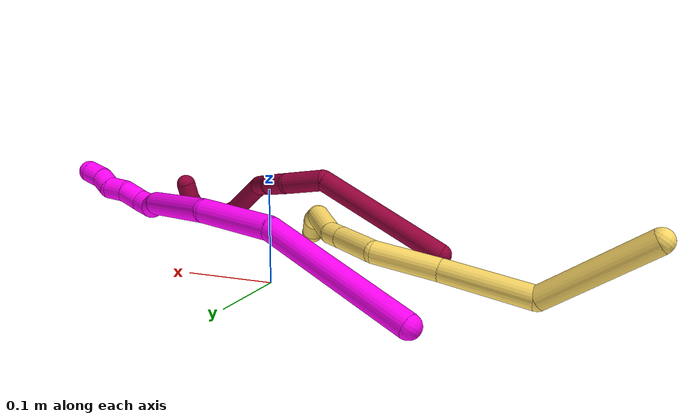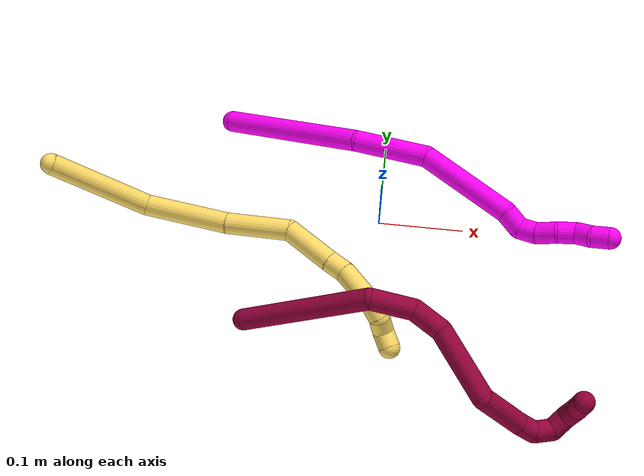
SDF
<sdf version="1.7">
 <world name="default">
  <model name="photoneo_s_sensor">
   <static>1</static>
   <pose>0 0 2 1.57079 1.57079 3.14159</pose>
   <link name="link">
    <inertial><mass>0.1</mass></inertial>
    <sensor name="sensor" type="depth">
     <update_rate>30</update_rate>
     <camera>
      <horizontal_fov>1.22</horizontal_fov>
      <image><width>1920</width><height>1200</height><format>B8G8R8</format></image>
      <clip><near>0.1</near><far>4</far></clip>
      <depth_camera><output>points</output></depth_camera>
     </camera>
     <plugin name="camera_plugin" filename="libgazebo_ros_depth_camera.so">
      <baseline>0.2</baseline>
      <alwaysOn>1</alwaysOn>
      <updateRate>0.0</updateRate>
      <cameraName>camera_ir</cameraName>
      <imageTopicName>/camera/color/image_raw</imageTopicName>
      <cameraInfoTopicName>/camera/color/camera_info</cameraInfoTopicName>
      <depthImageTopicName>/camera/depth/image_raw</depthImageTopicName>
      <depthImageCameraInfoTopicName>/camera/depth/camera_info</depthImageCameraInfoTopicName>
      <pointCloudTopicName>/camera/depth/points</pointCloudTopicName>
      <frameName>fr_optical</frameName>
      <pointCloudCutoff>0.1</pointCloudCutoff>
      <pointCloudCutoffMax>2.0</pointCloudCutoffMax>
      <distortionK1>0</distortionK1>
      <distortionK2>0</distortionK2>
      <distortionK3>0</distortionK3>
      <distortionT1>0</distortionT1>
      <distortionT2>0</distortionT2>
      <CxPrime>0</CxPrime>
      <Cx>0</Cx>
      <Cy>0</Cy>
      <focalLength>0</focalLength>
      <hackBaseline>0</hackBaseline>
     </plugin>
    </sensor>
   </link>
  </model>
  <model name="bin">
   <static>1</static>
   <link name="bottom">
    <collision name="collision-bottom">
     <pose>0 0 -0.01 0 -0 0</pose>
     <geometry><box><size>0.8 0.6 0.02</size></box></geometry>
     <surface>
      <friction><ode><mu>100</mu><mu2>100</mu2></ode></friction>
      <contact><collide_bitmask>65535</collide_bitmask></contact>
     </surface>
    </collision>
   </link>
   <link name="west_wall">
    <collision name="collision-west_wall">
     <pose>-0.41 0 0.1 0 -0 0</pose>
     <geometry><box><size>0.02 0.6 0.2</size></box></geometry>
     <surface>
      <friction><ode><mu>100</mu><mu2>100</mu2></ode></friction>
      <contact><collide_bitmask>65535</collide_bitmask></contact>
     </surface>
    </collision>
   </link>
   <link name="east_wall">
    <collision name="collision-east_wall">
     <pose>0.41 0 0.1 0 -0 0</pose>
     <geometry><box><size>0.02 0.6 0.2</size></box></geometry>
     <surface>
      <friction><ode><mu>100</mu><mu2>100</mu2></ode></friction>
      <contact><collide_bitmask>65535</collide_bitmask></contact>
     </surface>
    </collision>
   </link>
   <link name="south_wall">
    <collision name="collision-south_wall">
     <pose>0 -0.31 0.1 0 -0 0</pose>
     <geometry><box><size>0.8 0.02 0.2</size></box></geometry>
     <surface>
      <friction><ode><mu>100</mu><mu2>100</mu2></ode></friction>
      <contact><collide_bitmask>65535</collide_bitmask></contact>
     </surface>
    </collision>
   </link>
   <link name="north_wall">
    <collision name="collision-north_wall">
     <pose>0 0.31 0.1 0 -0 0</pose>
     <geometry><box><size>0.8 0.02 0.2</size></box></geometry>
     <surface>
      <friction><ode><mu>100</mu><mu2>100</mu2></ode></friction>
      <contact><collide_bitmask>65535</collide_bitmask></contact>
     </surface>
    </collision>
   </link>
  </model>
  <model name="5">
   <static>0</static>
   <link name="5">
    <collision name="collision-cylinder-e_1_1_4">
     <pose>0.032344 -0.017475 -0.050752 2.80998 0.54231 2.0579</pose>
     <geometry><cylinder><radius>0.0125</radius><length>0.125336</length></cylinder></geometry>
     <surface>
      <friction><ode><mu>1.16</mu><mu2>1.16</mu2><slip1>0</slip1><slip2>0</slip2></ode></friction>
      <contact><ode><kp>1e+06</kp><kd>1</kd><max_vel>0</max_vel><min_depth>0.001</min_depth></ode></contact>
     </surface>
    </collision>
    <visual name="visual-cylinder-e_1_1_4">
     <pose>0.032344 -0.017475 -0.050752 2.80998 0.54231 2.0579</pose>
     <geometry><cylinder><radius>0.0125</radius><length>0.125336</length></cylinder></geometry>
     <material><ambient>1 0.858824 0.4 1</ambient></material>
    </visual>
    <collision name="collision-cylinder-e_2_4_5">
     <pose>0.113162 -0.039813 -0.117609 2.84836 1.23674 2.73226</pose>
     <geometry><cylinder><radius>0.0125</radius><length>0.10262</length></cylinder></geometry>
     <surface>
      <friction><ode><mu>1.16</mu><mu2>1.16</mu2><slip1>0</slip1><slip2>0</slip2></ode></friction>
      <contact><ode><kp>1e+06</kp><kd>1</kd><max_vel>0</max_vel><min_depth>0.001</min_depth></ode></contact>
     </surface>
    </collision>
    <visual name="visual-cylinder-e_2_4_5">
     <pose>0.113162 -0.039813 -0.117609 2.84836 1.23674 2.73226</pose>
     <geometry><cylinder><radius>0.0125</radius><length>0.10262</length></cylinder></geometry>
     <material><ambient>1 0.858824 0.4 1</ambient></material>
    </visual>
    <collision name="collision-cylinder-e_3_5_6">
     <pose>0.197253 -0.044291 -0.147015 -3.11264 1.21327 -3.09988</pose>
     <geometry><cylinder><radius>0.0125</radius><length>0.076042</length></cylinder></geometry>
     <surface>
      <friction><ode><mu>1.16</mu><mu2>1.16</mu2><slip1>0</slip1><slip2>0</slip2></ode></friction>
      <contact><ode><kp>1e+06</kp><kd>1</kd><max_vel>0</max_vel><min_depth>0.001</min_depth></ode></contact>
     </surface>
    </collision>
    <visual name="visual-cylinder-e_3_5_6">
     <pose>0.197253 -0.044291 -0.147015 -3.11264 1.21327 -3.09988</pose>
     <geometry><cylinder><radius>0.0125</radius><length>0.076042</length></cylinder></geometry>
     <material><ambient>1 0.858824 0.4 1</ambient></material>
    </visual>
    <collision name="collision-cylinder-e_4_6_7">
     <pose>0.259533 -0.058659 -0.164788 1.86517 1.04658 1.3221</pose>
     <geometry><cylinder><radius>0.0125</radius><length>0.061599</length></cylinder></geometry>
     <surface>
      <friction><ode><mu>1.16</mu><mu2>1.16</mu2><slip1>0</slip1><slip2>0</slip2></ode></friction>
      <contact><ode><kp>1e+06</kp><kd>1</kd><max_vel>0</max_vel><min_depth>0.001</min_depth></ode></contact>
     </surface>
    </collision>
    <visual name="visual-cylinder-e_4_6_7">
     <pose>0.259533 -0.058659 -0.164788 1.86517 1.04658 1.3221</pose>
     <geometry><cylinder><radius>0.0125</radius><length>0.061599</length></cylinder></geometry>
     <material><ambient>1 0.858824 0.4 1</ambient></material>
    </visual>
    <collision name="collision-cylinder-e_5_7_8">
     <pose>0.296334 -0.078379 -0.171123 1.9294 1.08872 1.43584</pose>
     <geometry><cylinder><radius>0.0125</radius><length>0.022883</length></cylinder></geometry>
     <surface>
      <friction><ode><mu>1.16</mu><mu2>1.16</mu2><slip1>0</slip1><slip2>0</slip2></ode></friction>
      <contact><ode><kp>1e+06</kp><kd>1</kd><max_vel>0</max_vel><min_depth>0.001</min_depth></ode></contact>
     </surface>
    </collision>
    <visual name="visual-cylinder-e_5_7_8">
     <pose>0.296334 -0.078379 -0.171123 1.9294 1.08872 1.43584</pose>
     <geometry><cylinder><radius>0.0125</radius><length>0.022883</length></cylinder></geometry>
     <material><ambient>1 0.858824 0.4 1</ambient></material>
    </visual>
    <collision name="collision-cylinder-e_6_8_9">
     <pose>0.327082 -0.097732 -0.169865 1.35725 0.950587 0.786748</pose>
     <geometry><cylinder><radius>0.0125</radius><length>0.050655</length></cylinder></geometry>
     <surface>
      <friction><ode><mu>1.16</mu><mu2>1.16</mu2><slip1>0</slip1><slip2>0</slip2></ode></friction>
      <contact><ode><kp>1e+06</kp><kd>1</kd><max_vel>0</max_vel><min_depth>0.001</min_depth></ode></contact>
     </surface>
    </collision>
    <visual name="visual-cylinder-e_6_8_9">
     <pose>0.327082 -0.097732 -0.169865 1.35725 0.950587 0.786748</pose>
     <geometry><cylinder><radius>0.0125</radius><length>0.050655</length></cylinder></geometry>
     <material><ambient>1 0.858824 0.4 1</ambient></material>
    </visual>
    <collision name="collision-cylinder-e_7_9_10">
     <pose>0.352554 -0.120446 -0.170432 1.98757 0.490329 0.733945</pose>
     <geometry><cylinder><radius>0.0125</radius><length>0.020647</length></cylinder></geometry>
     <surface>
      <friction><ode><mu>1.16</mu><mu2>1.16</mu2><slip1>0</slip1><slip2>0</slip2></ode></friction>
      <contact><ode><kp>1e+06</kp><kd>1</kd><max_vel>0</max_vel><min_depth>0.001</min_depth></ode></contact>
     </surface>
    </collision>
    <visual name="visual-cylinder-e_7_9_10">
     <pose>0.352554 -0.120446 -0.170432 1.98757 0.490329 0.733945</pose>
     <geometry><cylinder><radius>0.0125</radius><length>0.020647</length></cylinder></geometry>
     <material><ambient>1 0.858824 0.4 1</ambient></material>
    </visual>
    <collision name="collision-cylinder-e_8_10_11">
     <pose>0.357333 -0.136536 -0.180556 2.26315 -0.00815 -0.017346</pose>
     <geometry><cylinder><radius>0.0125</radius><length>0.02017</length></cylinder></geometry>
     <surface>
      <friction><ode><mu>1.16</mu><mu2>1.16</mu2><slip1>0</slip1><slip2>0</slip2></ode></friction>
      <contact><ode><kp>1e+06</kp><kd>1</kd><max_vel>0</max_vel><min_depth>0.001</min_depth></ode></contact>
     </surface>
    </collision>
    <visual name="visual-cylinder-e_8_10_11">
     <pose>0.357333 -0.136536 -0.180556 2.26315 -0.00815 -0.017346</pose>
     <geometry><cylinder><radius>0.0125</radius><length>0.02017</length></cylinder></geometry>
     <material><ambient>1 0.858824 0.4 1</ambient></material>
    </visual>
    <collision name="collision-cylinder-e_9_11_2">
     <pose>0.362116 -0.153026 -0.187798 1.66265 0.506767 0.55324</pose>
     <geometry><cylinder><radius>0.0125</radius><length>0.020047</length></cylinder></geometry>
     <surface>
      <friction><ode><mu>1.16</mu><mu2>1.16</mu2><slip1>0</slip1><slip2>0</slip2></ode></friction>
      <contact><ode><kp>1e+06</kp><kd>1</kd><max_vel>0</max_vel><min_depth>0.001</min_depth></ode></contact>
     </surface>
    </collision>
    <visual name="visual-cylinder-e_9_11_2">
     <pose>0.362116 -0.153026 -0.187798 1.66265 0.506767 0.55324</pose>
     <geometry><cylinder><radius>0.0125</radius><length>0.020047</length></cylinder></geometry>
     <material><ambient>1 0.858824 0.4 1</ambient></material>
    </visual>
    <collision name="collision-sphere-2">
     <pose>0.366981 -0.161753 -0.188602 0 -0 0</pose>
     <geometry><sphere><radius>0.0125</radius></sphere></geometry>
     <surface>
      <friction><ode><mu>1.16</mu><mu2>1.16</mu2><slip1>0</slip1><slip2>0</slip2></ode></friction>
      <contact><ode><kp>1e+06</kp><kd>1</kd><max_vel>0</max_vel><min_depth>0.001</min_depth></ode></contact>
     </surface>
    </collision>
    <visual name="visual-sphere-2">
     <pose>0.366981 -0.161753 -0.188602 0 -0 0</pose>
     <geometry><sphere><radius>0.0125</radius></sphere></geometry>
     <material><ambient>1 0.858824 0.4 1</ambient></material>
    </visual>
    <collision name="collision-sphere-11">
     <pose>0.357251 -0.144299 -0.186994 0 -0 0</pose>
     <geometry><sphere><radius>0.0125</radius></sphere></geometry>
     <surface>
      <friction><ode><mu>1.16</mu><mu2>1.16</mu2><slip1>0</slip1><slip2>0</slip2></ode></friction>
      <contact><ode><kp>1e+06</kp><kd>1</kd><max_vel>0</max_vel><min_depth>0.001</min_depth></ode></contact>
     </surface>
    </collision>
    <visual name="visual-sphere-11">
     <pose>0.357251 -0.144299 -0.186994 0 -0 0</pose>
     <geometry><sphere><radius>0.0125</radius></sphere></geometry>
     <material><ambient>1 0.858824 0.4 1</ambient></material>
    </visual>
    <collision name="collision-sphere-10">
     <pose>0.357416 -0.128774 -0.174119 0 -0 0</pose>
     <geometry><sphere><radius>0.0125</radius></sphere></geometry>
     <surface>
      <friction><ode><mu>1.16</mu><mu2>1.16</mu2><slip1>0</slip1><slip2>0</slip2></ode></friction>
      <contact><ode><kp>1e+06</kp><kd>1</kd><max_vel>0</max_vel><min_depth>0.001</min_depth></ode></contact>
     </surface>
    </collision>
    <visual name="visual-sphere-10">
     <pose>0.357416 -0.128774 -0.174119 0 -0 0</pose>
     <geometry><sphere><radius>0.0125</radius></sphere></geometry>
     <material><ambient>1 0.858824 0.4 1</ambient></material>
    </visual>
    <collision name="collision-sphere-9">
     <pose>0.347692 -0.112118 -0.166745 0 -0 0</pose>
     <geometry><sphere><radius>0.0125</radius></sphere></geometry>
     <surface>
      <friction><ode><mu>1.16</mu><mu2>1.16</mu2><slip1>0</slip1><slip2>0</slip2></ode></friction>
      <contact><ode><kp>1e+06</kp><kd>1</kd><max_vel>0</max_vel><min_depth>0.001</min_depth></ode></contact>
     </surface>
    </collision>
    <visual name="visual-sphere-9">
     <pose>0.347692 -0.112118 -0.166745 0 -0 0</pose>
     <geometry><sphere><radius>0.0125</radius></sphere></geometry>
     <material><ambient>1 0.858824 0.4 1</ambient></material>
    </visual>
    <collision name="collision-sphere-4">
     <pose>0.064688 -0.03495 -0.101504 0 -0 0</pose>
     <geometry><sphere><radius>0.0125</radius></sphere></geometry>
     <surface>
      <friction><ode><mu>1.16</mu><mu2>1.16</mu2><slip1>0</slip1><slip2>0</slip2></ode></friction>
      <contact><ode><kp>1e+06</kp><kd>1</kd><max_vel>0</max_vel><min_depth>0.001</min_depth></ode></contact>
     </surface>
    </collision>
    <visual name="visual-sphere-4">
     <pose>0.064688 -0.03495 -0.101504 0 -0 0</pose>
     <geometry><sphere><radius>0.0125</radius></sphere></geometry>
     <material><ambient>1 0.858824 0.4 1</ambient></material>
    </visual>
    <collision name="collision-sphere-1">
     <geometry><sphere><radius>0.0125</radius></sphere></geometry>
     <surface>
      <friction><ode><mu>1.16</mu><mu2>1.16</mu2><slip1>0</slip1><slip2>0</slip2></ode></friction>
      <contact><ode><kp>1e+06</kp><kd>1</kd><max_vel>0</max_vel><min_depth>0.001</min_depth></ode></contact>
     </surface>
    </collision>
    <visual name="visual-sphere-1">
     <geometry><sphere><radius>0.0125</radius></sphere></geometry>
     <material><ambient>1 0.858824 0.4 1</ambient></material>
    </visual>
    <collision name="collision-sphere-8">
     <pose>0.306471 -0.083346 -0.172984 0 -0 0</pose>
     <geometry><sphere><radius>0.0125</radius></sphere></geometry>
     <surface>
      <friction><ode><mu>1.16</mu><mu2>1.16</mu2><slip1>0</slip1><slip2>0</slip2></ode></friction>
      <contact><ode><kp>1e+06</kp><kd>1</kd><max_vel>0</max_vel><min_depth>0.001</min_depth></ode></contact>
     </surface>
    </collision>
    <visual name="visual-sphere-8">
     <pose>0.306471 -0.083346 -0.172984 0 -0 0</pose>
     <geometry><sphere><radius>0.0125</radius></sphere></geometry>
     <material><ambient>1 0.858824 0.4 1</ambient></material>
    </visual>
    <collision name="collision-sphere-5">
     <pose>0.161636 -0.044676 -0.133715 0 -0 0</pose>
     <geometry><sphere><radius>0.0125</radius></sphere></geometry>
     <surface>
      <friction><ode><mu>1.16</mu><mu2>1.16</mu2><slip1>0</slip1><slip2>0</slip2></ode></friction>
      <contact><ode><kp>1e+06</kp><kd>1</kd><max_vel>0</max_vel><min_depth>0.001</min_depth></ode></contact>
     </surface>
    </collision>
    <visual name="visual-sphere-5">
     <pose>0.161636 -0.044676 -0.133715 0 -0 0</pose>
     <geometry><sphere><radius>0.0125</radius></sphere></geometry>
     <material><ambient>1 0.858824 0.4 1</ambient></material>
    </visual>
    <collision name="collision-sphere-6">
     <pose>0.232869 -0.043906 -0.160315 0 -0 0</pose>
     <geometry><sphere><radius>0.0125</radius></sphere></geometry>
     <surface>
      <friction><ode><mu>1.16</mu><mu2>1.16</mu2><slip1>0</slip1><slip2>0</slip2></ode></friction>
      <contact><ode><kp>1e+06</kp><kd>1</kd><max_vel>0</max_vel><min_depth>0.001</min_depth></ode></contact>
     </surface>
    </collision>
    <visual name="visual-sphere-6">
     <pose>0.232869 -0.043906 -0.160315 0 -0 0</pose>
     <geometry><sphere><radius>0.0125</radius></sphere></geometry>
     <material><ambient>1 0.858824 0.4 1</ambient></material>
    </visual>
    <collision name="collision-sphere-7">
     <pose>0.286197 -0.073412 -0.169261 0 -0 0</pose>
     <geometry><sphere><radius>0.0125</radius></sphere></geometry>
     <surface>
      <friction><ode><mu>1.16</mu><mu2>1.16</mu2><slip1>0</slip1><slip2>0</slip2></ode></friction>
      <contact><ode><kp>1e+06</kp><kd>1</kd><max_vel>0</max_vel><min_depth>0.001</min_depth></ode></contact>
     </surface>
    </collision>
    <visual name="visual-sphere-7">
     <pose>0.286197 -0.073412 -0.169261 0 -0 0</pose>
     <geometry><sphere><radius>0.0125</radius></sphere></geometry>
     <material><ambient>1 0.858824 0.4 1</ambient></material>
    </visual>
    <inertial>
     <pose>0.183497 -0.05662 -0.126412 0 -0 0</pose>
     <mass>0.5</mass>
     <inertia>
      <ixx>8.8e-05</ixx>
      <ixy>0</ixy>
      <ixz>0</ixz>
      <iyy>0.000403</iyy>
      <iyz>0</iyz>
      <izz>-0.000183</izz>
     </inertia>
    </inertial>
   </link>
   <pose>-0.382305 -0.001172 0.080287 0.510235 -0.446401 -0.266211</pose>
  </model>
  <model name="8">
   <static>0</static>
   <link name="8">
    <collision name="collision-cylinder-e_1_1_4">
     <pose>0.05181 0.038457 0.049484 -0.66066 0.690813 -0.245527</pose>
     <geometry><cylinder><radius>0.0125</radius><length>0.162627</length></cylinder></geometry>
     <surface>
      <friction><ode><mu>1.16</mu><mu2>1.16</mu2><slip1>0</slip1><slip2>0</slip2></ode></friction>
      <contact><ode><kp>1e+06</kp><kd>1</kd><max_vel>0</max_vel><min_depth>0.001</min_depth></ode></contact>
     </surface>
    </collision>
    <visual name="visual-cylinder-e_1_1_4">
     <pose>0.05181 0.038457 0.049484 -0.66066 0.690813 -0.245527</pose>
     <geometry><cylinder><radius>0.0125</radius><length>0.162627</length></cylinder></geometry>
     <material><ambient>0.584314 0 0.227451 1</ambient></material>
    </visual>
    <collision name="collision-cylinder-e_2_4_5">
     <pose>0.122352 0.07249 0.115535 0.260977 0.829507 0.115435</pose>
     <geometry><cylinder><radius>0.0125</radius><length>0.050792</length></cylinder></geometry>
     <surface>
      <friction><ode><mu>1.16</mu><mu2>1.16</mu2><slip1>0</slip1><slip2>0</slip2></ode></friction>
      <contact><ode><kp>1e+06</kp><kd>1</kd><max_vel>0</max_vel><min_depth>0.001</min_depth></ode></contact>
     </surface>
    </collision>
    <visual name="visual-cylinder-e_2_4_5">
     <pose>0.122352 0.07249 0.115535 0.260977 0.829507 0.115435</pose>
     <geometry><cylinder><radius>0.0125</radius><length>0.050792</length></cylinder></geometry>
     <material><ambient>0.584314 0 0.227451 1</ambient></material>
    </visual>
    <collision name="collision-cylinder-e_3_5_6">
     <pose>0.148329 0.062446 0.14837 0.332581 0.398455 0.06775</pose>
     <geometry><cylinder><radius>0.0125</radius><length>0.037345</length></cylinder></geometry>
     <surface>
      <friction><ode><mu>1.16</mu><mu2>1.16</mu2><slip1>0</slip1><slip2>0</slip2></ode></friction>
      <contact><ode><kp>1e+06</kp><kd>1</kd><max_vel>0</max_vel><min_depth>0.001</min_depth></ode></contact>
     </surface>
    </collision>
    <visual name="visual-cylinder-e_3_5_6">
     <pose>0.148329 0.062446 0.14837 0.332581 0.398455 0.06775</pose>
     <geometry><cylinder><radius>0.0125</radius><length>0.037345</length></cylinder></geometry>
     <material><ambient>0.584314 0 0.227451 1</ambient></material>
    </visual>
    <collision name="collision-cylinder-e_4_6_7">
     <pose>0.156157 0.040419 0.204713 0.388606 0.01347 0.002651</pose>
     <geometry><cylinder><radius>0.0125</radius><length>0.086619</length></cylinder></geometry>
     <surface>
      <friction><ode><mu>1.16</mu><mu2>1.16</mu2><slip1>0</slip1><slip2>0</slip2></ode></friction>
      <contact><ode><kp>1e+06</kp><kd>1</kd><max_vel>0</max_vel><min_depth>0.001</min_depth></ode></contact>
     </surface>
    </collision>
    <visual name="visual-cylinder-e_4_6_7">
     <pose>0.156157 0.040419 0.204713 0.388606 0.01347 0.002651</pose>
     <geometry><cylinder><radius>0.0125</radius><length>0.086619</length></cylinder></geometry>
     <material><ambient>0.584314 0 0.227451 1</ambient></material>
    </visual>
    <collision name="collision-cylinder-e_5_7_8">
     <pose>0.173548 0.003955 0.259422 0.940514 0.595146 0.309275</pose>
     <geometry><cylinder><radius>0.0125</radius><length>0.059961</length></cylinder></geometry>
     <surface>
      <friction><ode><mu>1.16</mu><mu2>1.16</mu2><slip1>0</slip1><slip2>0</slip2></ode></friction>
      <contact><ode><kp>1e+06</kp><kd>1</kd><max_vel>0</max_vel><min_depth>0.001</min_depth></ode></contact>
     </surface>
    </collision>
    <visual name="visual-cylinder-e_5_7_8">
     <pose>0.173548 0.003955 0.259422 0.940514 0.595146 0.309275</pose>
     <geometry><cylinder><radius>0.0125</radius><length>0.059961</length></cylinder></geometry>
     <material><ambient>0.584314 0 0.227451 1</ambient></material>
    </visual>
    <collision name="collision-cylinder-e_6_8_9">
     <pose>0.196452 -0.021088 0.280552 0.654528 0.639675 0.223931</pose>
     <geometry><cylinder><radius>0.0125</radius><length>0.020422</length></cylinder></geometry>
     <surface>
      <friction><ode><mu>1.16</mu><mu2>1.16</mu2><slip1>0</slip1><slip2>0</slip2></ode></friction>
      <contact><ode><kp>1e+06</kp><kd>1</kd><max_vel>0</max_vel><min_depth>0.001</min_depth></ode></contact>
     </surface>
    </collision>
    <visual name="visual-cylinder-e_6_8_9">
     <pose>0.196452 -0.021088 0.280552 0.654528 0.639675 0.223931</pose>
     <geometry><cylinder><radius>0.0125</radius><length>0.020422</length></cylinder></geometry>
     <material><ambient>0.584314 0 0.227451 1</ambient></material>
    </visual>
    <collision name="collision-cylinder-e_7_9_10">
     <pose>0.212304 -0.026357 0.291283 0.066425 1.16081 0.043567</pose>
     <geometry><cylinder><radius>0.0125</radius><length>0.021278</length></cylinder></geometry>
     <surface>
      <friction><ode><mu>1.16</mu><mu2>1.16</mu2><slip1>0</slip1><slip2>0</slip2></ode></friction>
      <contact><ode><kp>1e+06</kp><kd>1</kd><max_vel>0</max_vel><min_depth>0.001</min_depth></ode></contact>
     </surface>
    </collision>
    <visual name="visual-cylinder-e_7_9_10">
     <pose>0.212304 -0.026357 0.291283 0.066425 1.16081 0.043567</pose>
     <geometry><cylinder><radius>0.0125</radius><length>0.021278</length></cylinder></geometry>
     <material><ambient>0.584314 0 0.227451 1</ambient></material>
    </visual>
    <collision name="collision-cylinder-e_8_10_11">
     <pose>0.230757 -0.021092 0.295425 -1.58693 1.00293 -1.01659</pose>
     <geometry><cylinder><radius>0.0125</radius><length>0.020629</length></cylinder></geometry>
     <surface>
      <friction><ode><mu>1.16</mu><mu2>1.16</mu2><slip1>0</slip1><slip2>0</slip2></ode></friction>
      <contact><ode><kp>1e+06</kp><kd>1</kd><max_vel>0</max_vel><min_depth>0.001</min_depth></ode></contact>
     </surface>
    </collision>
    <visual name="visual-cylinder-e_8_10_11">
     <pose>0.230757 -0.021092 0.295425 -1.58693 1.00293 -1.01659</pose>
     <geometry><cylinder><radius>0.0125</radius><length>0.020629</length></cylinder></geometry>
     <material><ambient>0.584314 0 0.227451 1</ambient></material>
    </visual>
    <collision name="collision-cylinder-e_9_11_12">
     <pose>0.242952 -0.006454 0.298196 -1.26589 0.351902 -0.259402</pose>
     <geometry><cylinder><radius>0.0125</radius><length>0.020305</length></cylinder></geometry>
     <surface>
      <friction><ode><mu>1.16</mu><mu2>1.16</mu2><slip1>0</slip1><slip2>0</slip2></ode></friction>
      <contact><ode><kp>1e+06</kp><kd>1</kd><max_vel>0</max_vel><min_depth>0.001</min_depth></ode></contact>
     </surface>
    </collision>
    <visual name="visual-cylinder-e_9_11_12">
     <pose>0.242952 -0.006454 0.298196 -1.26589 0.351902 -0.259402</pose>
     <geometry><cylinder><radius>0.0125</radius><length>0.020305</length></cylinder></geometry>
     <material><ambient>0.584314 0 0.227451 1</ambient></material>
    </visual>
    <collision name="collision-cylinder-e_10_12_2">
     <pose>0.24725 0.012239 0.303774 -1.29509 0.079875 -0.060426</pose>
     <geometry><cylinder><radius>0.0125</radius><length>0.020022</length></cylinder></geometry>
     <surface>
      <friction><ode><mu>1.16</mu><mu2>1.16</mu2><slip1>0</slip1><slip2>0</slip2></ode></friction>
      <contact><ode><kp>1e+06</kp><kd>1</kd><max_vel>0</max_vel><min_depth>0.001</min_depth></ode></contact>
     </surface>
    </collision>
    <visual name="visual-cylinder-e_10_12_2">
     <pose>0.24725 0.012239 0.303774 -1.29509 0.079875 -0.060426</pose>
     <geometry><cylinder><radius>0.0125</radius><length>0.020022</length></cylinder></geometry>
     <material><ambient>0.584314 0 0.227451 1</ambient></material>
    </visual>
    <collision name="collision-sphere-2">
     <pose>0.248049 0.021841 0.30649 0 -0 0</pose>
     <geometry><sphere><radius>0.0125</radius></sphere></geometry>
     <surface>
      <friction><ode><mu>1.16</mu><mu2>1.16</mu2><slip1>0</slip1><slip2>0</slip2></ode></friction>
      <contact><ode><kp>1e+06</kp><kd>1</kd><max_vel>0</max_vel><min_depth>0.001</min_depth></ode></contact>
     </surface>
    </collision>
    <visual name="visual-sphere-2">
     <pose>0.248049 0.021841 0.30649 0 -0 0</pose>
     <geometry><sphere><radius>0.0125</radius></sphere></geometry>
     <material><ambient>0.584314 0 0.227451 1</ambient></material>
    </visual>
    <collision name="collision-sphere-12">
     <pose>0.246452 0.002636 0.301057 0 -0 0</pose>
     <geometry><sphere><radius>0.0125</radius></sphere></geometry>
     <surface>
      <friction><ode><mu>1.16</mu><mu2>1.16</mu2><slip1>0</slip1><slip2>0</slip2></ode></friction>
      <contact><ode><kp>1e+06</kp><kd>1</kd><max_vel>0</max_vel><min_depth>0.001</min_depth></ode></contact>
     </surface>
    </collision>
    <visual name="visual-sphere-12">
     <pose>0.246452 0.002636 0.301057 0 -0 0</pose>
     <geometry><sphere><radius>0.0125</radius></sphere></geometry>
     <material><ambient>0.584314 0 0.227451 1</ambient></material>
    </visual>
    <collision name="collision-sphere-11">
     <pose>0.239453 -0.015545 0.295335 0 -0 0</pose>
     <geometry><sphere><radius>0.0125</radius></sphere></geometry>
     <surface>
      <friction><ode><mu>1.16</mu><mu2>1.16</mu2><slip1>0</slip1><slip2>0</slip2></ode></friction>
      <contact><ode><kp>1e+06</kp><kd>1</kd><max_vel>0</max_vel><min_depth>0.001</min_depth></ode></contact>
     </surface>
    </collision>
    <visual name="visual-sphere-11">
     <pose>0.239453 -0.015545 0.295335 0 -0 0</pose>
     <geometry><sphere><radius>0.0125</radius></sphere></geometry>
     <material><ambient>0.584314 0 0.227451 1</ambient></material>
    </visual>
    <collision name="collision-sphere-10">
     <pose>0.222062 -0.026639 0.295514 0 -0 0</pose>
     <geometry><sphere><radius>0.0125</radius></sphere></geometry>
     <surface>
      <friction><ode><mu>1.16</mu><mu2>1.16</mu2><slip1>0</slip1><slip2>0</slip2></ode></friction>
      <contact><ode><kp>1e+06</kp><kd>1</kd><max_vel>0</max_vel><min_depth>0.001</min_depth></ode></contact>
     </surface>
    </collision>
    <visual name="visual-sphere-10">
     <pose>0.222062 -0.026639 0.295514 0 -0 0</pose>
     <geometry><sphere><radius>0.0125</radius></sphere></geometry>
     <material><ambient>0.584314 0 0.227451 1</ambient></material>
    </visual>
    <collision name="collision-sphere-9">
     <pose>0.202547 -0.026076 0.287051 0 -0 0</pose>
     <geometry><sphere><radius>0.0125</radius></sphere></geometry>
     <surface>
      <friction><ode><mu>1.16</mu><mu2>1.16</mu2><slip1>0</slip1><slip2>0</slip2></ode></friction>
      <contact><ode><kp>1e+06</kp><kd>1</kd><max_vel>0</max_vel><min_depth>0.001</min_depth></ode></contact>
     </surface>
    </collision>
    <visual name="visual-sphere-9">
     <pose>0.202547 -0.026076 0.287051 0 -0 0</pose>
     <geometry><sphere><radius>0.0125</radius></sphere></geometry>
     <material><ambient>0.584314 0 0.227451 1</ambient></material>
    </visual>
    <collision name="collision-sphere-4">
     <pose>0.10362 0.076914 0.098968 0 -0 0</pose>
     <geometry><sphere><radius>0.0125</radius></sphere></geometry>
     <surface>
      <friction><ode><mu>1.16</mu><mu2>1.16</mu2><slip1>0</slip1><slip2>0</slip2></ode></friction>
      <contact><ode><kp>1e+06</kp><kd>1</kd><max_vel>0</max_vel><min_depth>0.001</min_depth></ode></contact>
     </surface>
    </collision>
    <visual name="visual-sphere-4">
     <pose>0.10362 0.076914 0.098968 0 -0 0</pose>
     <geometry><sphere><radius>0.0125</radius></sphere></geometry>
     <material><ambient>0.584314 0 0.227451 1</ambient></material>
    </visual>
    <collision name="collision-sphere-1">
     <geometry><sphere><radius>0.0125</radius></sphere></geometry>
     <surface>
      <friction><ode><mu>1.16</mu><mu2>1.16</mu2><slip1>0</slip1><slip2>0</slip2></ode></friction>
      <contact><ode><kp>1e+06</kp><kd>1</kd><max_vel>0</max_vel><min_depth>0.001</min_depth></ode></contact>
     </surface>
    </collision>
    <visual name="visual-sphere-1">
     <geometry><sphere><radius>0.0125</radius></sphere></geometry>
     <material><ambient>0.584314 0 0.227451 1</ambient></material>
    </visual>
    <collision name="collision-sphere-8">
     <pose>0.190356 -0.016101 0.274053 0 -0 0</pose>
     <geometry><sphere><radius>0.0125</radius></sphere></geometry>
     <surface>
      <friction><ode><mu>1.16</mu><mu2>1.16</mu2><slip1>0</slip1><slip2>0</slip2></ode></friction>
      <contact><ode><kp>1e+06</kp><kd>1</kd><max_vel>0</max_vel><min_depth>0.001</min_depth></ode></contact>
     </surface>
    </collision>
    <visual name="visual-sphere-8">
     <pose>0.190356 -0.016101 0.274053 0 -0 0</pose>
     <geometry><sphere><radius>0.0125</radius></sphere></geometry>
     <material><ambient>0.584314 0 0.227451 1</ambient></material>
    </visual>
    <collision name="collision-sphere-5">
     <pose>0.141084 0.068065 0.132103 0 -0 0</pose>
     <geometry><sphere><radius>0.0125</radius></sphere></geometry>
     <surface>
      <friction><ode><mu>1.16</mu><mu2>1.16</mu2><slip1>0</slip1><slip2>0</slip2></ode></friction>
      <contact><ode><kp>1e+06</kp><kd>1</kd><max_vel>0</max_vel><min_depth>0.001</min_depth></ode></contact>
     </surface>
    </collision>
    <visual name="visual-sphere-5">
     <pose>0.141084 0.068065 0.132103 0 -0 0</pose>
     <geometry><sphere><radius>0.0125</radius></sphere></geometry>
     <material><ambient>0.584314 0 0.227451 1</ambient></material>
    </visual>
    <collision name="collision-sphere-6">
     <pose>0.155574 0.056827 0.164637 0 -0 0</pose>
     <geometry><sphere><radius>0.0125</radius></sphere></geometry>
     <surface>
      <friction><ode><mu>1.16</mu><mu2>1.16</mu2><slip1>0</slip1><slip2>0</slip2></ode></friction>
      <contact><ode><kp>1e+06</kp><kd>1</kd><max_vel>0</max_vel><min_depth>0.001</min_depth></ode></contact>
     </surface>
    </collision>
    <visual name="visual-sphere-6">
     <pose>0.155574 0.056827 0.164637 0 -0 0</pose>
     <geometry><sphere><radius>0.0125</radius></sphere></geometry>
     <material><ambient>0.584314 0 0.227451 1</ambient></material>
    </visual>
    <collision name="collision-sphere-7">
     <pose>0.15674 0.024011 0.24479 0 -0 0</pose>
     <geometry><sphere><radius>0.0125</radius></sphere></geometry>
     <surface>
      <friction><ode><mu>1.16</mu><mu2>1.16</mu2><slip1>0</slip1><slip2>0</slip2></ode></friction>
      <contact><ode><kp>1e+06</kp><kd>1</kd><max_vel>0</max_vel><min_depth>0.001</min_depth></ode></contact>
     </surface>
    </collision>
    <visual name="visual-sphere-7">
     <pose>0.15674 0.024011 0.24479 0 -0 0</pose>
     <geometry><sphere><radius>0.0125</radius></sphere></geometry>
     <material><ambient>0.584314 0 0.227451 1</ambient></material>
    </visual>
    <inertial>
     <pose>0.13457 0.029387 0.165805 0 -0 0</pose>
     <mass>0.5</mass>
     <inertia>
      <ixx>0.000322</ixx>
      <ixy>0</ixy>
      <ixz>0</ixz>
      <iyy>0.000344</iyy>
      <iyz>0</iyz>
      <izz>-0.000373</izz>
     </inertia>
    </inertial>
   </link>
   <pose>-0.144194 -0.143286 0.011859 1.35629 0.165094 0.658233</pose>
  </model>
  <model name="10">
   <static>0</static>
   <link name="10">
    <collision name="collision-cylinder-e_1_1_4">
     <pose>0.06257 -0.006843 -0.059659 3.02739 0.805947 2.875</pose>
     <geometry><cylinder><radius>0.0125</radius><length>0.173449</length></cylinder></geometry>
     <surface>
      <friction><ode><mu>1.16</mu><mu2>1.16</mu2><slip1>0</slip1><slip2>0</slip2></ode></friction>
      <contact><ode><kp>1e+06</kp><kd>1</kd><max_vel>0</max_vel><min_depth>0.001</min_depth></ode></contact>
     </surface>
    </collision>
    <visual name="visual-cylinder-e_1_1_4">
     <pose>0.06257 -0.006843 -0.059659 3.02739 0.805947 2.875</pose>
     <geometry><cylinder><radius>0.0125</radius><length>0.173449</length></cylinder></geometry>
     <material><ambient>1 0 0.964706 1</ambient></material>
    </visual>
    <collision name="collision-cylinder-e_2_4_5">
     <pose>0.154088 -0.029113 -0.146054 2.61824 0.753309 1.95122</pose>
     <geometry><cylinder><radius>0.0125</radius><length>0.084635</length></cylinder></geometry>
     <surface>
      <friction><ode><mu>1.16</mu><mu2>1.16</mu2><slip1>0</slip1><slip2>0</slip2></ode></friction>
      <contact><ode><kp>1e+06</kp><kd>1</kd><max_vel>0</max_vel><min_depth>0.001</min_depth></ode></contact>
     </surface>
    </collision>
    <visual name="visual-cylinder-e_2_4_5">
     <pose>0.154088 -0.029113 -0.146054 2.61824 0.753309 1.95122</pose>
     <geometry><cylinder><radius>0.0125</radius><length>0.084635</length></cylinder></geometry>
     <material><ambient>1 0 0.964706 1</ambient></material>
    </visual>
    <collision name="collision-cylinder-e_3_5_6">
     <pose>0.231932 -0.065647 -0.189549 2.24186 1.06704 1.77089</pose>
     <geometry><cylinder><radius>0.0125</radius><length>0.111664</length></cylinder></geometry>
     <surface>
      <friction><ode><mu>1.16</mu><mu2>1.16</mu2><slip1>0</slip1><slip2>0</slip2></ode></friction>
      <contact><ode><kp>1e+06</kp><kd>1</kd><max_vel>0</max_vel><min_depth>0.001</min_depth></ode></contact>
     </surface>
    </collision>
    <visual name="visual-cylinder-e_3_5_6">
     <pose>0.231932 -0.065647 -0.189549 2.24186 1.06704 1.77089</pose>
     <geometry><cylinder><radius>0.0125</radius><length>0.111664</length></cylinder></geometry>
     <material><ambient>1 0 0.964706 1</ambient></material>
    </visual>
    <collision name="collision-cylinder-e_4_6_7">
     <pose>0.291473 -0.092523 -0.206514 1.60645 1.07397 1.10559</pose>
     <geometry><cylinder><radius>0.0125</radius><length>0.024219</length></cylinder></geometry>
     <surface>
      <friction><ode><mu>1.16</mu><mu2>1.16</mu2><slip1>0</slip1><slip2>0</slip2></ode></friction>
      <contact><ode><kp>1e+06</kp><kd>1</kd><max_vel>0</max_vel><min_depth>0.001</min_depth></ode></contact>
     </surface>
    </collision>
    <visual name="visual-cylinder-e_4_6_7">
     <pose>0.291473 -0.092523 -0.206514 1.60645 1.07397 1.10559</pose>
     <geometry><cylinder><radius>0.0125</radius><length>0.024219</length></cylinder></geometry>
     <material><ambient>1 0 0.964706 1</ambient></material>
    </visual>
    <collision name="collision-cylinder-e_5_7_8">
     <pose>0.310021 -0.10044 -0.212956 2.80975 0.875182 2.45413</pose>
     <geometry><cylinder><radius>0.0125</radius><length>0.020588</length></cylinder></geometry>
     <surface>
      <friction><ode><mu>1.16</mu><mu2>1.16</mu2><slip1>0</slip1><slip2>0</slip2></ode></friction>
      <contact><ode><kp>1e+06</kp><kd>1</kd><max_vel>0</max_vel><min_depth>0.001</min_depth></ode></contact>
     </surface>
    </collision>
    <visual name="visual-cylinder-e_5_7_8">
     <pose>0.310021 -0.10044 -0.212956 2.80975 0.875182 2.45413</pose>
     <geometry><cylinder><radius>0.0125</radius><length>0.020588</length></cylinder></geometry>
     <material><ambient>1 0 0.964706 1</ambient></material>
    </visual>
    <collision name="collision-cylinder-e_6_8_9">
     <pose>0.324618 -0.1039 -0.229059 3.00947 0.592157 2.71445</pose>
     <geometry><cylinder><radius>0.0125</radius><length>0.023989</length></cylinder></geometry>
     <surface>
      <friction><ode><mu>1.16</mu><mu2>1.16</mu2><slip1>0</slip1><slip2>0</slip2></ode></friction>
      <contact><ode><kp>1e+06</kp><kd>1</kd><max_vel>0</max_vel><min_depth>0.001</min_depth></ode></contact>
     </surface>
    </collision>
    <visual name="visual-cylinder-e_6_8_9">
     <pose>0.324618 -0.1039 -0.229059 3.00947 0.592157 2.71445</pose>
     <geometry><cylinder><radius>0.0125</radius><length>0.023989</length></cylinder></geometry>
     <material><ambient>1 0 0.964706 1</ambient></material>
    </visual>
    <collision name="collision-cylinder-e_7_9_10">
     <pose>0.336891 -0.109409 -0.24704 2.66429 0.548124 1.71488</pose>
     <geometry><cylinder><radius>0.0125</radius><length>0.021409</length></cylinder></geometry>
     <surface>
      <friction><ode><mu>1.16</mu><mu2>1.16</mu2><slip1>0</slip1><slip2>0</slip2></ode></friction>
      <contact><ode><kp>1e+06</kp><kd>1</kd><max_vel>0</max_vel><min_depth>0.001</min_depth></ode></contact>
     </surface>
    </collision>
    <visual name="visual-cylinder-e_7_9_10">
     <pose>0.336891 -0.109409 -0.24704 2.66429 0.548124 1.71488</pose>
     <geometry><cylinder><radius>0.0125</radius><length>0.021409</length></cylinder></geometry>
     <material><ambient>1 0 0.964706 1</ambient></material>
    </visual>
    <collision name="collision-cylinder-e_8_10_11">
     <pose>0.350095 -0.112796 -0.261583 -3.01627 0.866516 -2.87195</pose>
     <geometry><cylinder><radius>0.0125</radius><length>0.020013</length></cylinder></geometry>
     <surface>
      <friction><ode><mu>1.16</mu><mu2>1.16</mu2><slip1>0</slip1><slip2>0</slip2></ode></friction>
      <contact><ode><kp>1e+06</kp><kd>1</kd><max_vel>0</max_vel><min_depth>0.001</min_depth></ode></contact>
     </surface>
    </collision>
    <visual name="visual-cylinder-e_8_10_11">
     <pose>0.350095 -0.112796 -0.261583 -3.01627 0.866516 -2.87195</pose>
     <geometry><cylinder><radius>0.0125</radius><length>0.020013</length></cylinder></geometry>
     <material><ambient>1 0 0.964706 1</ambient></material>
    </visual>
    <collision name="collision-cylinder-e_9_11_2">
     <pose>0.36407 -0.113946 -0.275508 2.8859 0.68645 2.45099</pose>
     <geometry><cylinder><radius>0.0125</radius><length>0.020035</length></cylinder></geometry>
     <surface>
      <friction><ode><mu>1.16</mu><mu2>1.16</mu2><slip1>0</slip1><slip2>0</slip2></ode></friction>
      <contact><ode><kp>1e+06</kp><kd>1</kd><max_vel>0</max_vel><min_depth>0.001</min_depth></ode></contact>
     </surface>
    </collision>
    <visual name="visual-cylinder-e_9_11_2">
     <pose>0.36407 -0.113946 -0.275508 2.8859 0.68645 2.45099</pose>
     <geometry><cylinder><radius>0.0125</radius><length>0.020035</length></cylinder></geometry>
     <material><ambient>1 0 0.964706 1</ambient></material>
    </visual>
    <collision name="collision-sphere-2">
     <pose>0.370419 -0.115906 -0.283005 0 -0 0</pose>
     <geometry><sphere><radius>0.0125</radius></sphere></geometry>
     <surface>
      <friction><ode><mu>1.16</mu><mu2>1.16</mu2><slip1>0</slip1><slip2>0</slip2></ode></friction>
      <contact><ode><kp>1e+06</kp><kd>1</kd><max_vel>0</max_vel><min_depth>0.001</min_depth></ode></contact>
     </surface>
    </collision>
    <visual name="visual-sphere-2">
     <pose>0.370419 -0.115906 -0.283005 0 -0 0</pose>
     <geometry><sphere><radius>0.0125</radius></sphere></geometry>
     <material><ambient>1 0 0.964706 1</ambient></material>
    </visual>
    <collision name="collision-sphere-11">
     <pose>0.357721 -0.111986 -0.268011 0 -0 0</pose>
     <geometry><sphere><radius>0.0125</radius></sphere></geometry>
     <surface>
      <friction><ode><mu>1.16</mu><mu2>1.16</mu2><slip1>0</slip1><slip2>0</slip2></ode></friction>
      <contact><ode><kp>1e+06</kp><kd>1</kd><max_vel>0</max_vel><min_depth>0.001</min_depth></ode></contact>
     </surface>
    </collision>
    <visual name="visual-sphere-11">
     <pose>0.357721 -0.111986 -0.268011 0 -0 0</pose>
     <geometry><sphere><radius>0.0125</radius></sphere></geometry>
     <material><ambient>1 0 0.964706 1</ambient></material>
    </visual>
    <collision name="collision-sphere-10">
     <pose>0.342469 -0.113606 -0.255155 0 -0 0</pose>
     <geometry><sphere><radius>0.0125</radius></sphere></geometry>
     <surface>
      <friction><ode><mu>1.16</mu><mu2>1.16</mu2><slip1>0</slip1><slip2>0</slip2></ode></friction>
      <contact><ode><kp>1e+06</kp><kd>1</kd><max_vel>0</max_vel><min_depth>0.001</min_depth></ode></contact>
     </surface>
    </collision>
    <visual name="visual-sphere-10">
     <pose>0.342469 -0.113606 -0.255155 0 -0 0</pose>
     <geometry><sphere><radius>0.0125</radius></sphere></geometry>
     <material><ambient>1 0 0.964706 1</ambient></material>
    </visual>
    <collision name="collision-sphere-9">
     <pose>0.331313 -0.105212 -0.238925 0 -0 0</pose>
     <geometry><sphere><radius>0.0125</radius></sphere></geometry>
     <surface>
      <friction><ode><mu>1.16</mu><mu2>1.16</mu2><slip1>0</slip1><slip2>0</slip2></ode></friction>
      <contact><ode><kp>1e+06</kp><kd>1</kd><max_vel>0</max_vel><min_depth>0.001</min_depth></ode></contact>
     </surface>
    </collision>
    <visual name="visual-sphere-9">
     <pose>0.331313 -0.105212 -0.238925 0 -0 0</pose>
     <geometry><sphere><radius>0.0125</radius></sphere></geometry>
     <material><ambient>1 0 0.964706 1</ambient></material>
    </visual>
    <collision name="collision-sphere-4">
     <pose>0.125141 -0.013686 -0.119318 0 -0 0</pose>
     <geometry><sphere><radius>0.0125</radius></sphere></geometry>
     <surface>
      <friction><ode><mu>1.16</mu><mu2>1.16</mu2><slip1>0</slip1><slip2>0</slip2></ode></friction>
      <contact><ode><kp>1e+06</kp><kd>1</kd><max_vel>0</max_vel><min_depth>0.001</min_depth></ode></contact>
     </surface>
    </collision>
    <visual name="visual-sphere-4">
     <pose>0.125141 -0.013686 -0.119318 0 -0 0</pose>
     <geometry><sphere><radius>0.0125</radius></sphere></geometry>
     <material><ambient>1 0 0.964706 1</ambient></material>
    </visual>
    <collision name="collision-sphere-1">
     <geometry><sphere><radius>0.0125</radius></sphere></geometry>
     <surface>
      <friction><ode><mu>1.16</mu><mu2>1.16</mu2><slip1>0</slip1><slip2>0</slip2></ode></friction>
      <contact><ode><kp>1e+06</kp><kd>1</kd><max_vel>0</max_vel><min_depth>0.001</min_depth></ode></contact>
     </surface>
    </collision>
    <visual name="visual-sphere-1">
     <geometry><sphere><radius>0.0125</radius></sphere></geometry>
     <material><ambient>1 0 0.964706 1</ambient></material>
    </visual>
    <collision name="collision-sphere-8">
     <pose>0.317924 -0.102589 -0.219194 0 -0 0</pose>
     <geometry><sphere><radius>0.0125</radius></sphere></geometry>
     <surface>
      <friction><ode><mu>1.16</mu><mu2>1.16</mu2><slip1>0</slip1><slip2>0</slip2></ode></friction>
      <contact><ode><kp>1e+06</kp><kd>1</kd><max_vel>0</max_vel><min_depth>0.001</min_depth></ode></contact>
     </surface>
    </collision>
    <visual name="visual-sphere-8">
     <pose>0.317924 -0.102589 -0.219194 0 -0 0</pose>
     <geometry><sphere><radius>0.0125</radius></sphere></geometry>
     <material><ambient>1 0 0.964706 1</ambient></material>
    </visual>
    <collision name="collision-sphere-5">
     <pose>0.183036 -0.04454 -0.17279 0 -0 0</pose>
     <geometry><sphere><radius>0.0125</radius></sphere></geometry>
     <surface>
      <friction><ode><mu>1.16</mu><mu2>1.16</mu2><slip1>0</slip1><slip2>0</slip2></ode></friction>
      <contact><ode><kp>1e+06</kp><kd>1</kd><max_vel>0</max_vel><min_depth>0.001</min_depth></ode></contact>
     </surface>
    </collision>
    <visual name="visual-sphere-5">
     <pose>0.183036 -0.04454 -0.17279 0 -0 0</pose>
     <geometry><sphere><radius>0.0125</radius></sphere></geometry>
     <material><ambient>1 0 0.964706 1</ambient></material>
    </visual>
    <collision name="collision-sphere-6">
     <pose>0.280828 -0.086754 -0.206308 0 -0 0</pose>
     <geometry><sphere><radius>0.0125</radius></sphere></geometry>
     <surface>
      <friction><ode><mu>1.16</mu><mu2>1.16</mu2><slip1>0</slip1><slip2>0</slip2></ode></friction>
      <contact><ode><kp>1e+06</kp><kd>1</kd><max_vel>0</max_vel><min_depth>0.001</min_depth></ode></contact>
     </surface>
    </collision>
    <visual name="visual-sphere-6">
     <pose>0.280828 -0.086754 -0.206308 0 -0 0</pose>
     <geometry><sphere><radius>0.0125</radius></sphere></geometry>
     <material><ambient>1 0 0.964706 1</ambient></material>
    </visual>
    <collision name="collision-sphere-7">
     <pose>0.302119 -0.098291 -0.206719 0 -0 0</pose>
     <geometry><sphere><radius>0.0125</radius></sphere></geometry>
     <surface>
      <friction><ode><mu>1.16</mu><mu2>1.16</mu2><slip1>0</slip1><slip2>0</slip2></ode></friction>
      <contact><ode><kp>1e+06</kp><kd>1</kd><max_vel>0</max_vel><min_depth>0.001</min_depth></ode></contact>
     </surface>
    </collision>
    <visual name="visual-sphere-7">
     <pose>0.302119 -0.098291 -0.206719 0 -0 0</pose>
     <geometry><sphere><radius>0.0125</radius></sphere></geometry>
     <material><ambient>1 0 0.964706 1</ambient></material>
    </visual>
    <inertial>
     <pose>0.185069 -0.04933 -0.149599 0 -0 0</pose>
     <mass>0.5</mass>
     <inertia>
      <ixx>-0.000118</ixx>
      <ixy>0</ixy>
      <ixz>0</ixz>
      <iyy>0.00074</iyy>
      <iyz>0</iyz>
      <izz>-0.000388</izz>
     </inertia>
    </inertial>
   </link>
   <pose>-0.18983 0.113411 0.012599 2.14785 -0.076898 -1.01545</pose>
  </model>
 </world>
</sdf>
